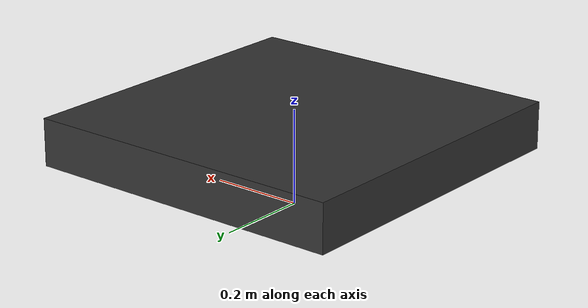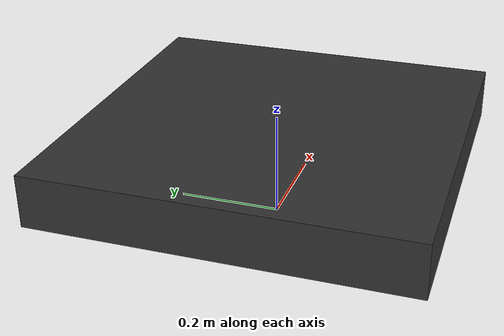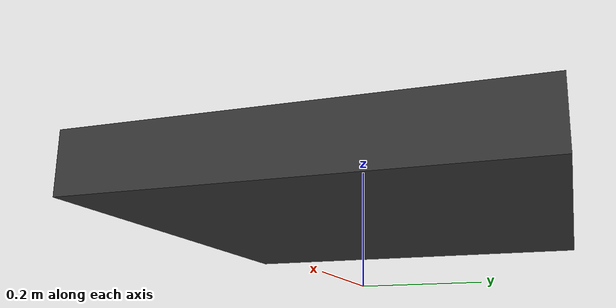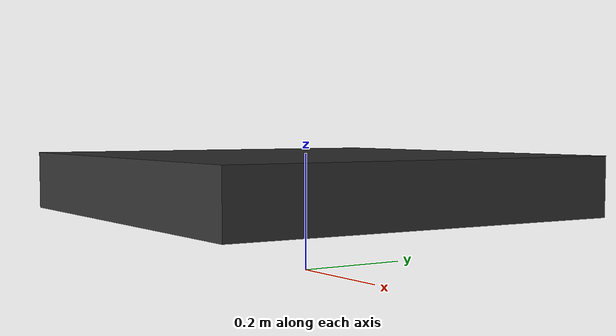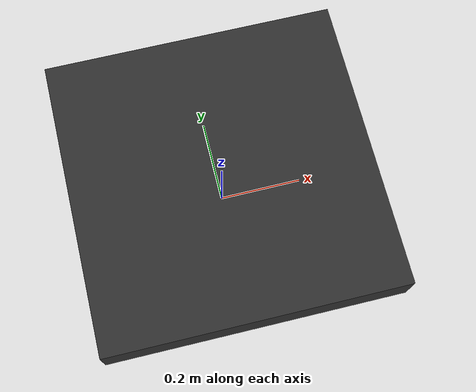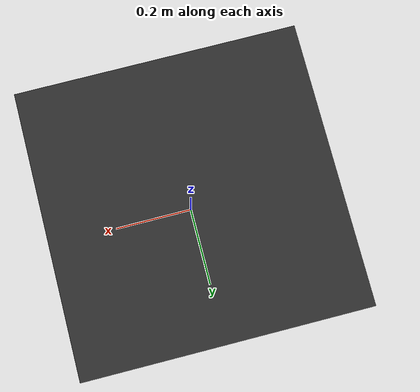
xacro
<?xml version="1.0"?>
<robot name="rover" xmlns:xacro="http://www.ros.org/wiki/xacro">

 <xacro:include filename="$(find autonomous_rover)/urdf/2_rover_helper.xacro" />
 <xacro:include filename="$(find autonomous_rover)/urdf/2_rover_gazebo_materials.xacro" />

<link name="odom_link"/>

<xacro:Shapes name="chassis" position_of_joint_from_parent_rpy="0 0 0" position_of_joint_from_parent_xyz="0.0 0.0 0.15"
              mass="5" parent="odom" box_size=".7 0.7 0.1"  color="grey"/>

</robot>

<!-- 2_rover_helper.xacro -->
<robot xmlns:xacro="http://www.ros.org/wiki/xacro">

 <!-- Chasis property -->
<xacro:property name="chassis_length" value="0.7"/>
<xacro:property name="chassis_width" value="0.7"/>
<xacro:property name="chassis_height" value="0.1"/>
<xacro:property name="chassis_mass" value="1"/>

  <!-- wheel property -->
<xacro:property name="wheel_radius" value="0.15"/>
<xacro:property name="wheel_length" value="0.1"/>
<xacro:property name="wheel_mass" value="2"/>
<!-- inertia = 1/12*m(d^2+h^2) -->
<xacro:property name="chassis_inertia_xx" value="${chassis_mass/12.0 * ( (chassis_height*chassis_height) + (chassis_width*chassis_width)  ) }" />
<xacro:property name="chassis_inertia_yy" value="${chassis_mass/12.0 * ( (chassis_height*chassis_height) + (chassis_length*chassis_length) ) }" />
<xacro:property name="chassis_inertia_zz" value="${chassis_mass/12.0 * ( (chassis_width*chassis_width)   + (chassis_length*chassis_length)  ) }" />

                        <!--Shapes LINKS AND JOINT-->

<xacro:macro name="Shapes" params="name position_of_joint_from_parent_xyz  color position_of_joint_from_parent_rpy box_size parent  mass   ">
    <link name="${name}_link">
        <inertial>
            <mass value="${mass}" />
            <origin xyz="0 0 0" rpy="0 0 0" />
            <inertia ixx="0.004" ixy="0.001" ixz="0" iyy="0.006" iyz="0" izz="0.007" />
        </inertial>

        <collision>
            <geometry>
                <box size="${box_size}"/>
            </geometry>
        </collision>

        <visual>
            <geometry>
                <box size="${box_size}"/>
            </geometry>
            <material name="${color}"/>
        </visual>
    </link>

    <joint name="${name}_joint" type="fixed">
      <parent link= "${parent}_link"/>
      <child link= "${name}_link"/>
      <origin rpy="${position_of_joint_from_parent_rpy}" xyz="${position_of_joint_from_parent_xyz}"/>
    </joint>
     <gazebo reference="${name}_link">
        <turnGravityOff>false</turnGravityOff>
     </gazebo>
</xacro:macro>

                        <!--Wheel LINKS AND JOINT-->

<xacro:macro name="Wheel" params="name position_of_joint_from_parent_rpy position_of_joint_from_parent_xyz color mass  ">
    <link name="${name}_link">
        <collision>
            <geometry>
                <cylinder radius="0.15" length="0.1"/>
            </geometry>
        </collision>

        <inertial>
            <mass value="${mass}" />
            <origin xyz="0 0 0" rpy="0 0 0" />
            <inertia ixx="0.004" ixy="0.001" ixz="0" iyy="0.006" iyz="0" izz="0.007" />
        </inertial>

        <visual>
            <geometry>
                <cylinder radius="0.15" length="0.1"/>
            </geometry>
            <material name="${color}"/>
        </visual>
    </link>

    <joint name="${name}_wheel_joint" type="continuous">
 <!-- axis is to defind on which axis body will rotate -> value 1 activates the corresponding axis -->
        <axis xyz="0 0 1"/>
        <origin rpy="${position_of_joint_from_parent_rpy}" xyz="${position_of_joint_from_parent_xyz}"/>
        <child link="${name}_link"/>
        <parent link="chassis_link"/>
        <joint_properties damping="1.0" friction="5.0"/>
      </joint>
    </xacro:macro>

</robot>

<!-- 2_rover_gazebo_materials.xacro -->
<!--
  We are splitting the xacro file into smaller files
-->
<robot name="Jani" xmlns:xacro="https://www.ros.org/wiki/xacro" >
  <!-- Define used colors -->
  <material name="black">
    <color rgba="0.0 0.0 0.0 1.0"/>
  </material>
  <material name="blue">
    <color rgba="0.203125 0.23828125 0.28515625 1.0"/>
  </material>
  <material name="green">
    <color rgba="0.0 0.8 0.0 1.0"/>
  </material>
  <material name="grey">
    <color rgba="0.2 0.2 0.2 1.0"/>
  </material>
  <material name="orange">
    <color rgba="1.0 0.423529411765 0.0392156862745 1.0"/>
  </material>
  <material name="brown">
    <color rgba="0.870588235294 0.811764705882 0.764705882353 1.0"/>
  </material>
  <material name="red">
    <color rgba="0.80078125 0.12890625 0.1328125 1.0"/>
  </material>
  <material name="white">
    <color rgba="1.0 1.0 1.0 1.0"/>
  </material>

<!-- Differntial Driveeeeeeeeeeee -->

  <gazebo>
<plugin name='diff_drive' filename='libgazebo_ros_diff_drive.so'>

        <!-- wheels -->
        <left_joint>wheel_back_left_joint</left_joint>
        <right_joint>wheel_back_right_joint</right_joint>

        <!-- kinematics -->
        <wheel_separation>0.8</wheel_separation>
        <wheel_diameter>0.3</wheel_diameter>

        <!-- limits -->
        <max_wheel_torque>20</max_wheel_torque>
        <max_wheel_acceleration>1.0</max_wheel_acceleration>

        <!-- output -->
        <publish_odom>true</publish_odom>
        <publish_odom_tf>true</publish_odom_tf>
        <publish_wheel_tf>true</publish_wheel_tf>

        <odometry_frame>odom_link</odometry_frame>
        <robot_base_frame>chassis</robot_base_frame>

      </plugin>
</gazebo>

<!-- CAMERAAAAAAAAAAAAAAAAAAAAAAAAAAAAAA -->

      <gazebo reference="camera">
    <sensor type="camera" name="camera1">
      <update_rate>30.0</update_rate>
      <camera name="head">
        <horizontal_fov>1.3962634</horizontal_fov>
        <image>
          <width>800</width>
          <height>800</height>
          <format>R8G8B8</format>
        </image>
        <clip>
          <near>0.02</near>
          <far>300</far>
        </clip>
        <noise>
          <type>gaussian</type>
          <!-- Noise is sampled independently per pixel on each frame.
               That pixel's noise value is added to each of its color
               channels, which at that point lie in the range [0,1]. -->
          <mean>0.0</mean>
          <stddev>0.007</stddev>
        </noise>
      </camera>
      <plugin name="camera_controller" filename="libgazebo_ros_camera.so">
        <alwaysOn>true</alwaysOn>
        <updateRate>0.0</updateRate>
        <cameraName>/camera</cameraName>
        <imageTopicName>image_raw</imageTopicName>
        <cameraInfoTopicName>camera_info</cameraInfoTopicName>
        <frameName>camera_link</frameName>
        <hackBaseline>0.07</hackBaseline>
      </plugin>
    </sensor>
  </gazebo>

<!-- LIDAAAAAAAAAAAAAAAAAAAAAAAAAAR -->

   <gazebo reference="lidar">
    <sensor name="gazebo_lidar" type="ray">
      <update_rate>12.0</update_rate>
      <plugin filename="libgazebo_ros_ray_sensor.so" name="gazebo_lidar">
        <ros>
          <remapping>~/out:=scan</remapping>
        </ros>
        <output_type>sensor_msgs/LaserScan</output_type>
        <frame_name>lidar</frame_name>
      </plugin>
      <ray>
        <scan>
          <horizontal>
            <samples>360</samples>
            <resolution>1</resolution>
            <min_angle>0.00</min_angle>
            <max_angle>3.14</max_angle>
          </horizontal>
        </scan>
        <range>
          <min>0.120</min>
          <max>3.5</max>
          <resolution>0.015</resolution>
        </range>
        <noise>
          <type>gaussian</type>
          <mean>0.0</mean>
          <stddev>0.01</stddev>
        </noise>
      </ray>
    </sensor>
    <material>Gazebo/DarkGrey</material>
  </gazebo>

</robot>
